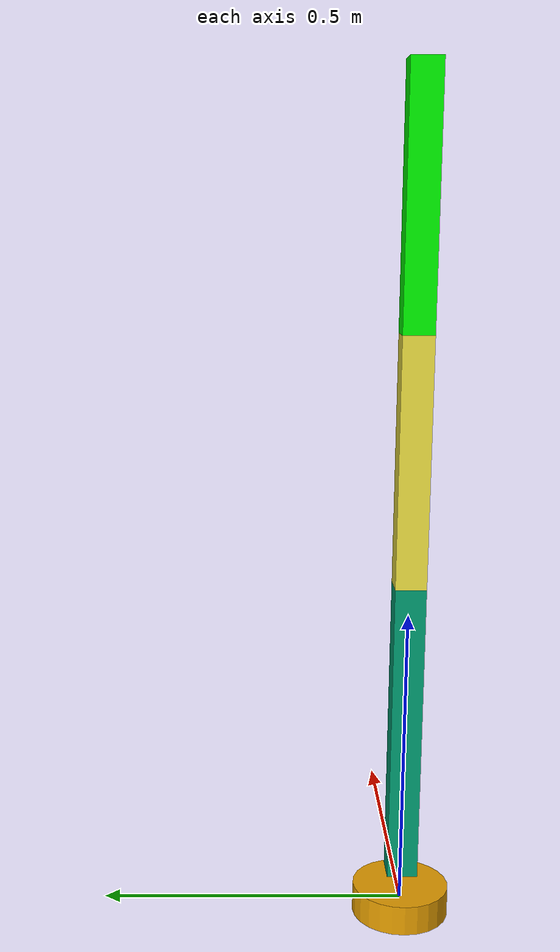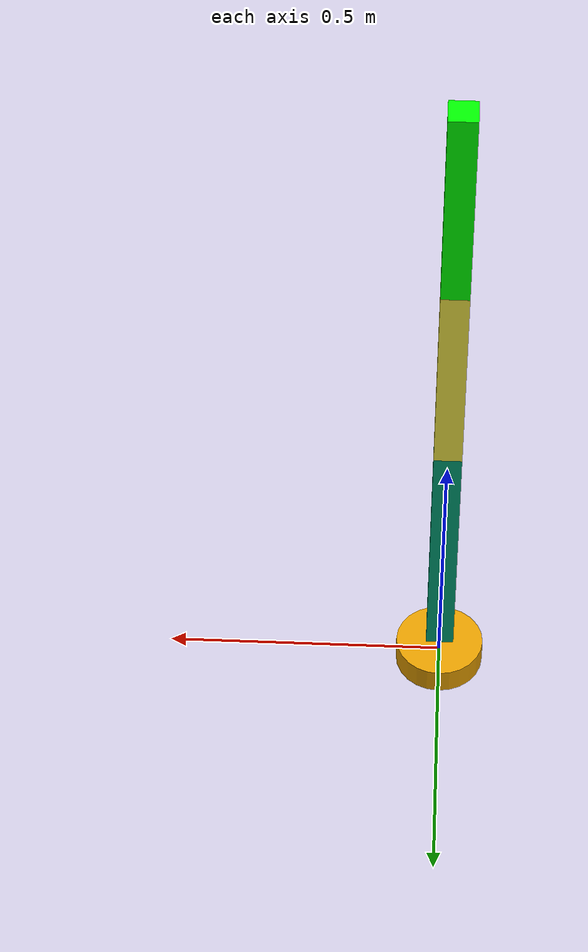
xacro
<?xml version="1.0"?>
<robot xmlns:xacro="http://www.ros.org/wiki/xacro" name="three_link_arm">
    <xacro:arg name="initial_positions_file" default="initial_positions.yaml" />

    <!-- Import three_link_arm urdf file -->
    <xacro:include filename="$(find three_link_arm_description)/urdf/three_link_arm.urdf" />

    <!-- Import control_xacro -->
    <xacro:include filename="three_link_arm.ros2_control.xacro" />

    <xacro:three_link_arm_ros2_control name="FakeSystem" initial_positions_file="$(arg initial_positions_file)"/>

</robot>

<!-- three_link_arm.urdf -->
<robot name="three_link_arm">
  <!--底座-->
  <link name="base_link">
    <visual>
        <geometry>
          <cylinder radius="0.08" length="0.05"/>
        </geometry>
    </visual>
    <collision>
      <geometry>
        <cylinder radius="0.08" length="0.05"/>
      </geometry>
    </collision>
  </link>
  <!-- 机械臂安装坐标系：把平面3R竖起来 -->
  <link name="arm_base"/>
  <joint name="arm_base_joint" type="fixed">
    <parent link="base_link"/>
    <child link="arm_base"/>
    <origin
      xyz="0 0 0.05"
      rpy="0 -1.57079632679 0"/>
  </joint>
  <!--第一根连杆-->
  <link name="link1">
    <visual>
        <origin xyz="0.25 0 0"/>
        <geometry>
          <box size = "0.5 0.05 0.05"/>
        </geometry>
    </visual>
    <collision>
      <origin xyz="0.25 0 0"/>
      <geometry>
        <box size="0.5 0.05 0.05"/>
      </geometry>
    </collision>
    <inertial>

    <origin xyz="0.25 0 0" rpy="0 0 0"/>

    <mass value="1.0"/>
      <!--
      均匀密度长方体惯性公式:

      绕 x 轴: Ixx = (1/12) * m * (Ly^2 + Lz^2)
      绕 y 轴：Iyy = (1/12) * m * (Lx^2 + Lz^2)
      绕 z 轴：Izz = (1/12) * m * (Lx^2 + Ly^2)
      -->
    <inertia
        ixx="0.0004167"
        ixy="0"
        ixz="0"
        iyy="0.02104"
        iyz="0"
        izz="0.02104"/>

    </inertial>
  </link>
  <!--第一个关节-->
  <joint name="joint1" type="revolute">
    <parent link="arm_base"/>
    <child link="link1"/>
    <origin xyz="0 0 0" rpy="0 0 0"/>
    <axis xyz="0 0 1"/>
    <limit
        lower="-3.14"
        upper="3.14"
        effort="10"
        velocity="2"
    />
  </joint>
  <!--第二个连杆-->
  <link name="link2">
    <visual>
      <origin xyz="0.20 0 0"/>
      <geometry>
        <box size ="0.4 0.05 0.05"/>
      </geometry>
    </visual>
    <collision>
      <origin xyz="0.20 0 0"/>
      <geometry>
        <box size="0.4 0.05 0.05"/>
      </geometry>
    </collision>
    <inertial>

      <origin xyz="0.2 0 0" rpy="0 0 0"/>

      <mass value="0.8"/>

      <!--
      均匀密度长方体惯性公式:

      绕 x 轴: Ixx = (1/12) * m * (Ly^2 + Lz^2)
      绕 y 轴：Iyy = (1/12) * m * (Lx^2 + Lz^2)
      绕 z 轴：Izz = (1/12) * m * (Lx^2 + Ly^2)
      -->

      <inertia
          ixx="0.000167"
          ixy="0"
          ixz="0"
          iyy="0.01083"
          iyz="0"
          izz="0.01083"/>

    </inertial>
  </link>
  <!--第二个关节-->
  <joint name="joint2" type="revolute">
  <parent link="link1"/>
  <child link="link2"/>
  <origin xyz="0.5 0 0" rpy="0 0 0"/>
  <axis xyz="0 0 1"/>
  <limit
    lower="-3.14"
    upper="3.14"
    effort="10"
    velocity="2"
  />
  </joint>
  <!--第三个连杆-->
  <link name="link3">
  <visual>
    <!-- 让关节在杆的一端 -->
    <origin xyz="0.20 0 0"/>
    <geometry>
      <box size ="0.4 0.05 0.05"/>
    </geometry>
    <material name="green">
      <color rgba="0 1 0 1"/>
    </material>
  </visual>
  <collision>

    <origin xyz="0.2 0 0"/>

    <geometry>
      <box size="0.4 0.05 0.05"/>
    </geometry>

  </collision>
  <inertial>

    <origin xyz="0.2 0 0" rpy="0 0 0"/>

    <mass value="0.8"/>

    <!--
    均匀密度长方体惯性公式:

    绕 x 轴: Ixx = (1/12) * m * (Ly^2 + Lz^2)
    绕 y 轴：Iyy = (1/12) * m * (Lx^2 + Lz^2)
    绕 z 轴：Izz = (1/12) * m * (Lx^2 + Ly^2)
    -->

    <inertia
        ixx="0.000167"
        ixy="0"
        ixz="0"
        iyy="0.01083"
        iyz="0"
        izz="0.01083"/>

  </inertial>
  </link>
  <!--第三个关节-->
  <joint name="joint3" type="revolute">

    <parent link="link2"/>

    <child link="link3"/>

    <!-- joint3 在 link2 末端 -->
    <origin xyz="0.4 0 0" rpy="0 0 0"/>

    <axis xyz="0 0 1"/>

    <limit
        lower="-3.14"
        upper="3.14"
        effort="10"
        velocity="2"/>

  </joint>
  <!--末端执行器坐标系-->
  <link name="tool0"/>
  <joint name="tool0_joint" type="fixed">
    <parent link="link3"/>
    <child link="tool0"/>
    <origin xyz="0.4 0 0" rpy="0 0 0"/>
  </joint>
  <!-- ros2_control 配置 -->
  <ros2_control name="arm_system" type="system">

  <hardware>
    <plugin>
      mock_components/GenericSystem
    </plugin>
    <!-- 仿真硬件传输参数 -->
    <param name="fake_sensor_commands">
      true
    </param>
  </hardware>

  <joint name="joint1">

    <command_interface name="position"/>

    <state_interface name="position"/>
    <state_interface name="velocity"/>

  </joint>

  <joint name="joint2">

    <command_interface name="position"/>

    <state_interface name="position"/>
    <state_interface name="velocity"/>

  </joint>

  <joint name="joint3">

    <command_interface name="position"/>

    <state_interface name="position"/>
    <state_interface name="velocity"/>

  </joint>

  </ros2_control>
</robot>
